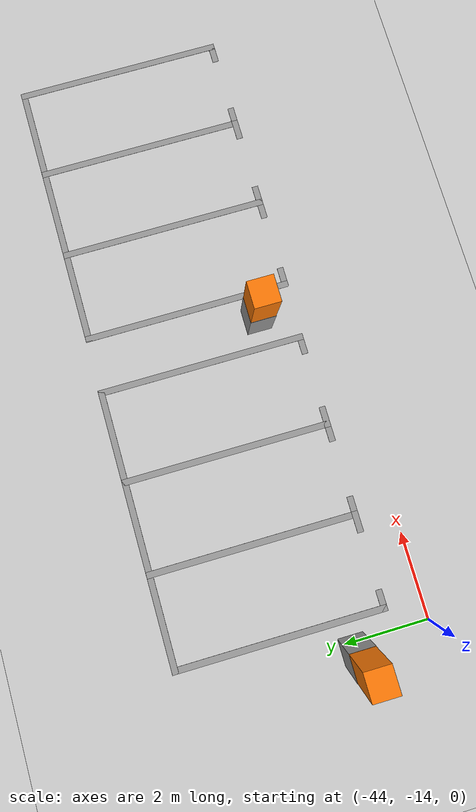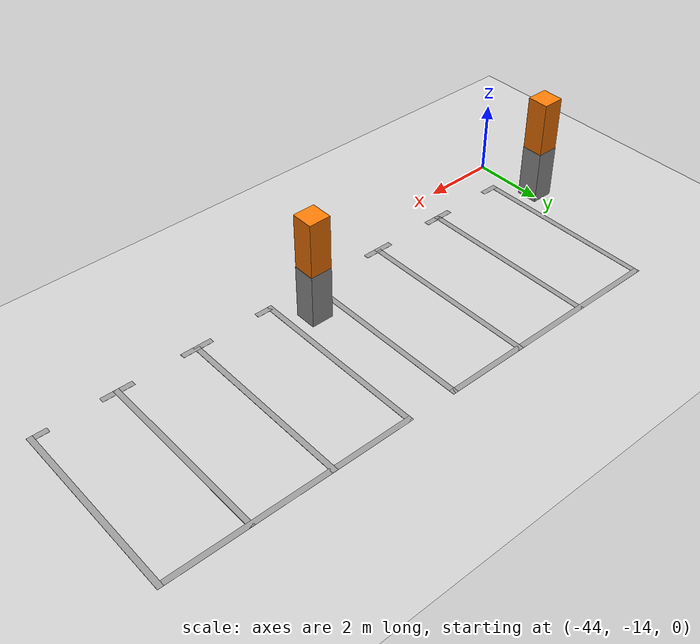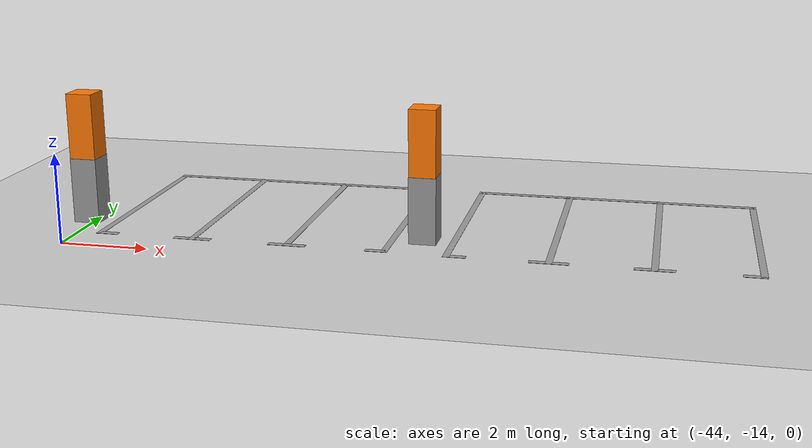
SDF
<sdf version="1.7">
 <world name="default">
  <model name="ground_plane">
   <static>1</static>
   <link name="link">
    <collision name="collision">
     <geometry><plane><normal>0 0 1</normal><size>100 100</size></plane></geometry>
     <surface><friction><ode><mu>100</mu><mu2>50</mu2></ode></friction></surface>
    </collision>
    <visual name="visual">
     <cast_shadows>0</cast_shadows>
     <geometry><plane><normal>0 0 1</normal><size>100 100</size></plane></geometry>
     <material>
      <script><uri>file://media/materials/scripts/gazebo.material</uri><name>Gazebo/Grey</name></script>
     </material>
    </visual>
   </link>
  </model>
  <model name="carport1_3_clone">
   <pose>-32.7918 -8.9241 0 0 -0 0</pose>
   <link name="Wall_105">
    <collision name="Wall_105_Collision">
     <geometry><box><size>0.61 0.6 1.5</size></box></geometry>
     <pose>0 0 0.75 0 -0 0</pose>
    </collision>
    <visual name="Wall_105_Visual">
     <pose>0 0 0.75 0 -0 0</pose>
     <geometry><box><size>0.61 0.6 1.5</size></box></geometry>
     <material>
      <script><uri>file://media/materials/scripts/gazebo.material</uri><name>Gazebo/Grey</name></script>
      <ambient>1 1 1 1</ambient>
     </material>
     <meta><layer>0</layer></meta>
    </visual>
    <pose>-3.47407 -3.2865 0 0 -0 0</pose>
   </link>
   <link name="Wall_116">
    <collision name="Wall_116_Collision">
     <geometry><box><size>5.1 0.15 0.005</size></box></geometry>
     <pose>0 0 0.0025 0 -0 0</pose>
    </collision>
    <visual name="Wall_116_Visual">
     <pose>0 0 0.0025 0 -0 0</pose>
     <geometry><box><size>5.1 0.15 0.005</size></box></geometry>
     <material>
      <script><uri>file://media/materials/scripts/gazebo.material</uri><name>Gazebo/Grey</name></script>
      <ambient>1 1 1 1</ambient>
     </material>
     <meta><layer>0</layer></meta>
    </visual>
    <pose>-2.82307 -1.7385 0 0 -0 1.5708</pose>
   </link>
   <link name="Wall_124">
    <collision name="Wall_124_Collision">
     <geometry><box><size>5.1 0.15 0.005</size></box></geometry>
     <pose>0 0 0.0025 0 -0 0</pose>
    </collision>
    <visual name="Wall_124_Visual">
     <pose>0 0 0.0025 0 -0 0</pose>
     <geometry><box><size>5.1 0.15 0.005</size></box></geometry>
     <material>
      <script><uri>file://media/materials/scripts/gazebo.material</uri><name>Gazebo/Grey</name></script>
      <ambient>1 1 1 1</ambient>
     </material>
     <meta><layer>0</layer></meta>
    </visual>
    <pose>3.70393 -1.7305 0 0 -0 1.5708</pose>
   </link>
   <link name="Wall_146">
    <collision name="Wall_146_Collision">
     <geometry><box><size>6.67711 0.15 0.005</size></box></geometry>
     <pose>0 0 0.0025 0 -0 0</pose>
    </collision>
    <visual name="Wall_146_Visual">
     <pose>0 0 0.0025 0 -0 0</pose>
     <geometry><box><size>6.67711 0.15 0.005</size></box></geometry>
     <material>
      <script><uri>file://media/materials/scripts/gazebo.material</uri><name>Gazebo/Grey</name></script>
      <ambient>1 1 1 1</ambient>
     </material>
     <meta><layer>0</layer></meta>
    </visual>
    <pose>0.440428 0.7405 0 0 -0 0.001226</pose>
   </link>
   <link name="Wall_168">
    <collision name="Wall_168_Collision">
     <geometry><box><size>5.1 0.15 0.005</size></box></geometry>
     <pose>0 0 0.0025 0 -0 0</pose>
    </collision>
    <visual name="Wall_168_Visual">
     <pose>0 0 0.0025 0 -0 0</pose>
     <geometry><box><size>5.1 0.15 0.005</size></box></geometry>
     <material>
      <script><uri>file://media/materials/scripts/gazebo.material</uri><name>Gazebo/Grey</name></script>
      <ambient>1 1 1 1</ambient>
     </material>
     <meta><layer>0</layer></meta>
    </visual>
    <pose>-0.64827 -1.73839 0 0 -0 1.57088</pose>
   </link>
   <link name="Wall_173">
    <collision name="Wall_173_Collision">
     <geometry><box><size>5.1 0.15 0.005</size></box></geometry>
     <pose>0 0 0.0025 0 -0 0</pose>
    </collision>
    <visual name="Wall_173_Visual">
     <pose>0 0 0.0025 0 -0 0</pose>
     <geometry><box><size>5.1 0.15 0.005</size></box></geometry>
     <material>
      <script><uri>file://media/materials/scripts/gazebo.material</uri><name>Gazebo/Grey</name></script>
      <ambient>1 1 1 1</ambient>
     </material>
     <meta><layer>0</layer></meta>
    </visual>
    <pose>1.52673 -1.73839 0 0 -0 1.57088</pose>
   </link>
   <link name="Wall_177">
    <collision name="Wall_177_Collision">
     <geometry><box><size>0.6 0.59 3</size></box></geometry>
     <pose>0 0 1.5 0 -0 0</pose>
    </collision>
    <visual name="Wall_177_Visual">
     <pose>0 0 1.5 0 -0 0</pose>
     <geometry><box><size>0.6 0.59 3</size></box></geometry>
     <material>
      <script><uri>file://media/materials/scripts/gazebo.material</uri><name>Gazebo/Grey</name></script>
      <ambient>0.996078 0.47451 0.0196078 1</ambient>
     </material>
     <meta><layer>0</layer></meta>
    </visual>
    <pose>-3.47407 -3.2865 0 0 -0 0</pose>
   </link>
   <link name="Wall_179">
    <collision name="Wall_179_Collision">
     <geometry><box><size>0.5 0.15 0.005</size></box></geometry>
     <pose>0 0 0.0025 0 -0 0</pose>
    </collision>
    <visual name="Wall_179_Visual">
     <pose>0 0 0.0025 0 -0 0</pose>
     <geometry><box><size>0.5 0.15 0.005</size></box></geometry>
     <material>
      <script><uri>file://media/materials/scripts/gazebo.material</uri><name>Gazebo/Grey</name></script>
      <ambient>1 1 1 1</ambient>
     </material>
     <meta><layer>0</layer></meta>
    </visual>
    <pose>-2.64807 -4.2135 0 0 -0 0</pose>
   </link>
   <link name="Wall_181">
    <collision name="Wall_181_Collision">
     <geometry><box><size>0.5 0.15 0.005</size></box></geometry>
     <pose>0 0 0.0025 0 -0 0</pose>
    </collision>
    <visual name="Wall_181_Visual">
     <pose>0 0 0.0025 0 -0 0</pose>
     <geometry><box><size>0.5 0.15 0.005</size></box></geometry>
     <material>
      <script><uri>file://media/materials/scripts/gazebo.material</uri><name>Gazebo/Grey</name></script>
      <ambient>1 1 1 1</ambient>
     </material>
     <meta><layer>0</layer></meta>
    </visual>
    <pose>-0.823072 -4.2135 0 0 -0 3.14159</pose>
   </link>
   <link name="Wall_183">
    <collision name="Wall_183_Collision">
     <geometry><box><size>0.5 0.15 0.005</size></box></geometry>
     <pose>0 0 0.0025 0 -0 0</pose>
    </collision>
    <visual name="Wall_183_Visual">
     <pose>0 0 0.0025 0 -0 0</pose>
     <geometry><box><size>0.5 0.15 0.005</size></box></geometry>
     <material>
      <script><uri>file://media/materials/scripts/gazebo.material</uri><name>Gazebo/Grey</name></script>
      <ambient>1 1 1 1</ambient>
     </material>
     <meta><layer>0</layer></meta>
    </visual>
    <pose>-0.473072 -4.2135 0 0 -0 0</pose>
   </link>
   <link name="Wall_185">
    <collision name="Wall_185_Collision">
     <geometry><box><size>0.5 0.15 0.005</size></box></geometry>
     <pose>0 0 0.0025 0 -0 0</pose>
    </collision>
    <visual name="Wall_185_Visual">
     <pose>0 0 0.0025 0 -0 0</pose>
     <geometry><box><size>0.5 0.15 0.005</size></box></geometry>
     <material>
      <script><uri>file://media/materials/scripts/gazebo.material</uri><name>Gazebo/Grey</name></script>
      <ambient>1 1 1 1</ambient>
     </material>
     <meta><layer>0</layer></meta>
    </visual>
    <pose>1.35193 -4.2135 0 0 -0 3.14159</pose>
   </link>
   <link name="Wall_187">
    <collision name="Wall_187_Collision">
     <geometry><box><size>0.5 0.15 0.005</size></box></geometry>
     <pose>0 0 0.0025 0 -0 0</pose>
    </collision>
    <visual name="Wall_187_Visual">
     <pose>0 0 0.0025 0 -0 0</pose>
     <geometry><box><size>0.5 0.15 0.005</size></box></geometry>
     <material>
      <script><uri>file://media/materials/scripts/gazebo.material</uri><name>Gazebo/Grey</name></script>
      <ambient>1 1 1 1</ambient>
     </material>
     <meta><layer>0</layer></meta>
    </visual>
    <pose>1.70193 -4.2135 0 0 -0 0</pose>
   </link>
   <link name="Wall_189">
    <collision name="Wall_189_Collision">
     <geometry><box><size>0.5 0.15 0.005</size></box></geometry>
     <pose>0 0 0.0025 0 -0 0</pose>
    </collision>
    <visual name="Wall_189_Visual">
     <pose>0 0 0.0025 0 -0 0</pose>
     <geometry><box><size>0.5 0.15 0.005</size></box></geometry>
     <material>
      <script><uri>file://media/materials/scripts/gazebo.material</uri><name>Gazebo/Grey</name></script>
      <ambient>1 1 1 1</ambient>
     </material>
     <meta><layer>0</layer></meta>
    </visual>
    <pose>3.52893 -4.2055 0 0 -0 3.14159</pose>
   </link>
   <static>1</static>
  </model>
  <model name="carport1_3_clone_clone_8">
   <pose>-40.6747 -8.8994 0 0 -0 0</pose>
   <link name="Wall_105">
    <collision name="Wall_105_Collision">
     <geometry><box><size>0.61 0.6 1.5</size></box></geometry>
     <pose>0 0 0.75 0 -0 0</pose>
    </collision>
    <visual name="Wall_105_Visual">
     <pose>0 0 0.75 0 -0 0</pose>
     <geometry><box><size>0.61 0.6 1.5</size></box></geometry>
     <material>
      <script><uri>file://media/materials/scripts/gazebo.material</uri><name>Gazebo/Grey</name></script>
      <ambient>1 1 1 1</ambient>
     </material>
     <meta><layer>0</layer></meta>
    </visual>
    <pose>-3.47407 -3.2865 0 0 -0 0</pose>
   </link>
   <link name="Wall_116">
    <collision name="Wall_116_Collision">
     <geometry><box><size>5.1 0.15 0.005</size></box></geometry>
     <pose>0 0 0.0025 0 -0 0</pose>
    </collision>
    <visual name="Wall_116_Visual">
     <pose>0 0 0.0025 0 -0 0</pose>
     <geometry><box><size>5.1 0.15 0.005</size></box></geometry>
     <material>
      <script><uri>file://media/materials/scripts/gazebo.material</uri><name>Gazebo/Grey</name></script>
      <ambient>1 1 1 1</ambient>
     </material>
     <meta><layer>0</layer></meta>
    </visual>
    <pose>-2.82307 -1.7385 0 0 -0 1.5708</pose>
   </link>
   <link name="Wall_124">
    <collision name="Wall_124_Collision">
     <geometry><box><size>5.1 0.15 0.005</size></box></geometry>
     <pose>0 0 0.0025 0 -0 0</pose>
    </collision>
    <visual name="Wall_124_Visual">
     <pose>0 0 0.0025 0 -0 0</pose>
     <geometry><box><size>5.1 0.15 0.005</size></box></geometry>
     <material>
      <script><uri>file://media/materials/scripts/gazebo.material</uri><name>Gazebo/Grey</name></script>
      <ambient>1 1 1 1</ambient>
     </material>
     <meta><layer>0</layer></meta>
    </visual>
    <pose>3.70393 -1.7305 0 0 -0 1.5708</pose>
   </link>
   <link name="Wall_146">
    <collision name="Wall_146_Collision">
     <geometry><box><size>6.67711 0.15 0.005</size></box></geometry>
     <pose>0 0 0.0025 0 -0 0</pose>
    </collision>
    <visual name="Wall_146_Visual">
     <pose>0 0 0.0025 0 -0 0</pose>
     <geometry><box><size>6.67711 0.15 0.005</size></box></geometry>
     <material>
      <script><uri>file://media/materials/scripts/gazebo.material</uri><name>Gazebo/Grey</name></script>
      <ambient>1 1 1 1</ambient>
     </material>
     <meta><layer>0</layer></meta>
    </visual>
    <pose>0.440428 0.7405 0 0 -0 0.001226</pose>
   </link>
   <link name="Wall_168">
    <collision name="Wall_168_Collision">
     <geometry><box><size>5.1 0.15 0.005</size></box></geometry>
     <pose>0 0 0.0025 0 -0 0</pose>
    </collision>
    <visual name="Wall_168_Visual">
     <pose>0 0 0.0025 0 -0 0</pose>
     <geometry><box><size>5.1 0.15 0.005</size></box></geometry>
     <material>
      <script><uri>file://media/materials/scripts/gazebo.material</uri><name>Gazebo/Grey</name></script>
      <ambient>1 1 1 1</ambient>
     </material>
     <meta><layer>0</layer></meta>
    </visual>
    <pose>-0.64827 -1.73839 0 0 -0 1.57088</pose>
   </link>
   <link name="Wall_173">
    <collision name="Wall_173_Collision">
     <geometry><box><size>5.1 0.15 0.005</size></box></geometry>
     <pose>0 0 0.0025 0 -0 0</pose>
    </collision>
    <visual name="Wall_173_Visual">
     <pose>0 0 0.0025 0 -0 0</pose>
     <geometry><box><size>5.1 0.15 0.005</size></box></geometry>
     <material>
      <script><uri>file://media/materials/scripts/gazebo.material</uri><name>Gazebo/Grey</name></script>
      <ambient>1 1 1 1</ambient>
     </material>
     <meta><layer>0</layer></meta>
    </visual>
    <pose>1.52673 -1.73839 0 0 -0 1.57088</pose>
   </link>
   <link name="Wall_177">
    <collision name="Wall_177_Collision">
     <geometry><box><size>0.6 0.59 3</size></box></geometry>
     <pose>0 0 1.5 0 -0 0</pose>
    </collision>
    <visual name="Wall_177_Visual">
     <pose>0 0 1.5 0 -0 0</pose>
     <geometry><box><size>0.6 0.59 3</size></box></geometry>
     <material>
      <script><uri>file://media/materials/scripts/gazebo.material</uri><name>Gazebo/Grey</name></script>
      <ambient>0.996078 0.47451 0.0196078 1</ambient>
     </material>
     <meta><layer>0</layer></meta>
    </visual>
    <pose>-3.47407 -3.2865 0 0 -0 0</pose>
   </link>
   <link name="Wall_179">
    <collision name="Wall_179_Collision">
     <geometry><box><size>0.5 0.15 0.005</size></box></geometry>
     <pose>0 0 0.0025 0 -0 0</pose>
    </collision>
    <visual name="Wall_179_Visual">
     <pose>0 0 0.0025 0 -0 0</pose>
     <geometry><box><size>0.5 0.15 0.005</size></box></geometry>
     <material>
      <script><uri>file://media/materials/scripts/gazebo.material</uri><name>Gazebo/Grey</name></script>
      <ambient>1 1 1 1</ambient>
     </material>
     <meta><layer>0</layer></meta>
    </visual>
    <pose>-2.64807 -4.2135 0 0 -0 0</pose>
   </link>
   <link name="Wall_181">
    <collision name="Wall_181_Collision">
     <geometry><box><size>0.5 0.15 0.005</size></box></geometry>
     <pose>0 0 0.0025 0 -0 0</pose>
    </collision>
    <visual name="Wall_181_Visual">
     <pose>0 0 0.0025 0 -0 0</pose>
     <geometry><box><size>0.5 0.15 0.005</size></box></geometry>
     <material>
      <script><uri>file://media/materials/scripts/gazebo.material</uri><name>Gazebo/Grey</name></script>
      <ambient>1 1 1 1</ambient>
     </material>
     <meta><layer>0</layer></meta>
    </visual>
    <pose>-0.823072 -4.2135 0 0 -0 3.14159</pose>
   </link>
   <link name="Wall_183">
    <collision name="Wall_183_Collision">
     <geometry><box><size>0.5 0.15 0.005</size></box></geometry>
     <pose>0 0 0.0025 0 -0 0</pose>
    </collision>
    <visual name="Wall_183_Visual">
     <pose>0 0 0.0025 0 -0 0</pose>
     <geometry><box><size>0.5 0.15 0.005</size></box></geometry>
     <material>
      <script><uri>file://media/materials/scripts/gazebo.material</uri><name>Gazebo/Grey</name></script>
      <ambient>1 1 1 1</ambient>
     </material>
     <meta><layer>0</layer></meta>
    </visual>
    <pose>-0.473072 -4.2135 0 0 -0 0</pose>
   </link>
   <link name="Wall_185">
    <collision name="Wall_185_Collision">
     <geometry><box><size>0.5 0.15 0.005</size></box></geometry>
     <pose>0 0 0.0025 0 -0 0</pose>
    </collision>
    <visual name="Wall_185_Visual">
     <pose>0 0 0.0025 0 -0 0</pose>
     <geometry><box><size>0.5 0.15 0.005</size></box></geometry>
     <material>
      <script><uri>file://media/materials/scripts/gazebo.material</uri><name>Gazebo/Grey</name></script>
      <ambient>1 1 1 1</ambient>
     </material>
     <meta><layer>0</layer></meta>
    </visual>
    <pose>1.35193 -4.2135 0 0 -0 3.14159</pose>
   </link>
   <link name="Wall_187">
    <collision name="Wall_187_Collision">
     <geometry><box><size>0.5 0.15 0.005</size></box></geometry>
     <pose>0 0 0.0025 0 -0 0</pose>
    </collision>
    <visual name="Wall_187_Visual">
     <pose>0 0 0.0025 0 -0 0</pose>
     <geometry><box><size>0.5 0.15 0.005</size></box></geometry>
     <material>
      <script><uri>file://media/materials/scripts/gazebo.material</uri><name>Gazebo/Grey</name></script>
      <ambient>1 1 1 1</ambient>
     </material>
     <meta><layer>0</layer></meta>
    </visual>
    <pose>1.70193 -4.2135 0 0 -0 0</pose>
   </link>
   <link name="Wall_189">
    <collision name="Wall_189_Collision">
     <geometry><box><size>0.5 0.15 0.005</size></box></geometry>
     <pose>0 0 0.0025 0 -0 0</pose>
    </collision>
    <visual name="Wall_189_Visual">
     <pose>0 0 0.0025 0 -0 0</pose>
     <geometry><box><size>0.5 0.15 0.005</size></box></geometry>
     <material>
      <script><uri>file://media/materials/scripts/gazebo.material</uri><name>Gazebo/Grey</name></script>
      <ambient>1 1 1 1</ambient>
     </material>
     <meta><layer>0</layer></meta>
    </visual>
    <pose>3.52893 -4.2055 0 0 -0 3.14159</pose>
   </link>
   <static>1</static>
  </model>
 </world>
</sdf>
